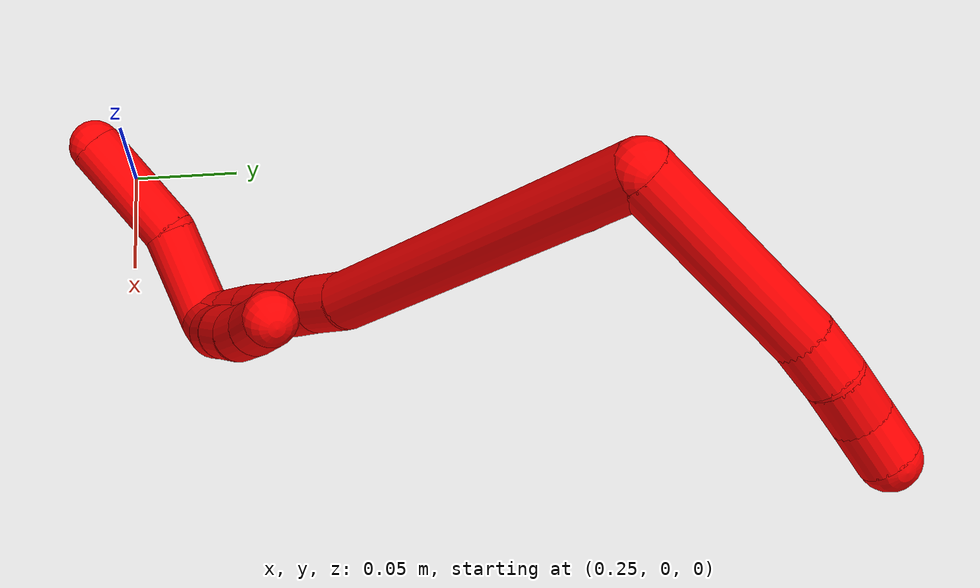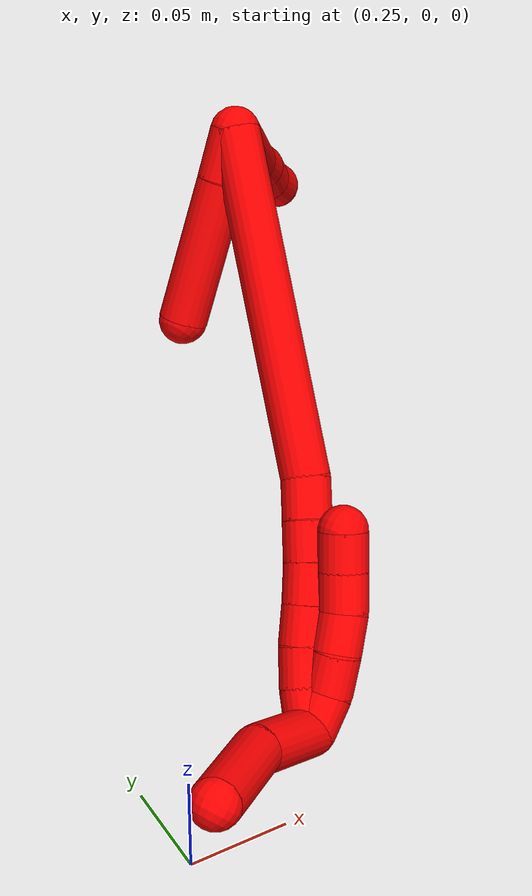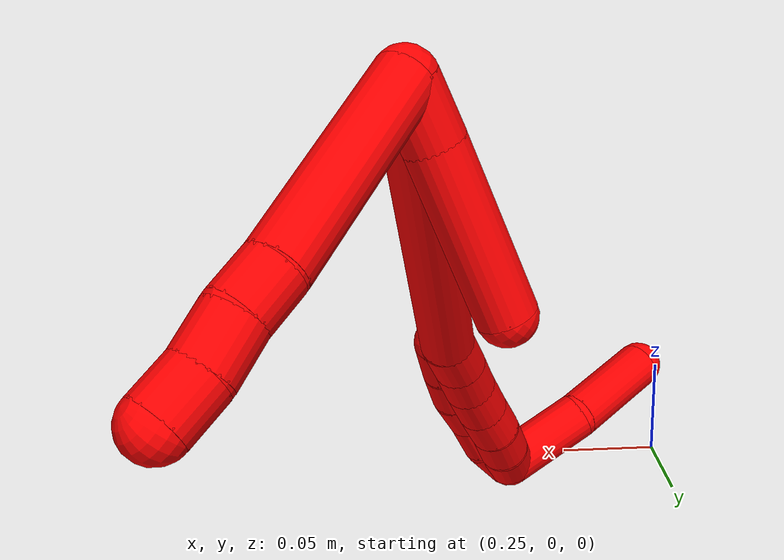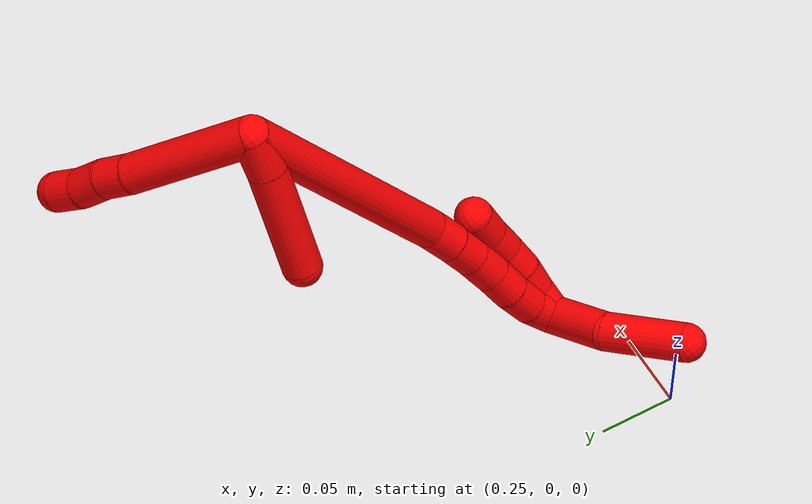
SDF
<sdf version="1.7">
 <world name="default">
  <model name="2">
   <static>0</static>
   <link name="2">
    <collision name="collision-cylinder-e_1_2_8">
     <pose>0.037744 -0.021719 0.008187 1.21032 1.01947 0.737957</pose>
     <geometry><cylinder><radius>0.0125</radius><length>0.08862</length></cylinder></geometry>
     <surface>
      <friction><ode><mu>1.16</mu><mu2>1.16</mu2><slip1>0</slip1><slip2>0</slip2></ode></friction>
      <contact><ode><kp>1e+06</kp><kd>1</kd><max_vel>0</max_vel><min_depth>0.001</min_depth></ode></contact>
     </surface>
    </collision>
    <visual name="visual-cylinder-e_1_2_8">
     <pose>0.037744 -0.021719 0.008187 1.21032 1.01947 0.737957</pose>
     <geometry><cylinder><radius>0.0125</radius><length>0.08862</length></cylinder></geometry>
     <material><ambient>1 0 0 1</ambient></material>
    </visual>
    <collision name="collision-cylinder-e_2_8_9">
     <pose>0.083368 -0.049268 0.018736 1.18589 0.897043 0.627141</pose>
     <geometry><cylinder><radius>0.0125</radius><length>0.020165</length></cylinder></geometry>
     <surface>
      <friction><ode><mu>1.16</mu><mu2>1.16</mu2><slip1>0</slip1><slip2>0</slip2></ode></friction>
      <contact><ode><kp>1e+06</kp><kd>1</kd><max_vel>0</max_vel><min_depth>0.001</min_depth></ode></contact>
     </surface>
    </collision>
    <visual name="visual-cylinder-e_2_8_9">
     <pose>0.083368 -0.049268 0.018736 1.18589 0.897043 0.627141</pose>
     <geometry><cylinder><radius>0.0125</radius><length>0.020165</length></cylinder></geometry>
     <material><ambient>1 0 0 1</ambient></material>
    </visual>
    <collision name="collision-cylinder-e_3_9_10">
     <pose>0.099508 -0.061493 0.02183 1.45669 0.908894 0.821896</pose>
     <geometry><cylinder><radius>0.0125</radius><length>0.020943</length></cylinder></geometry>
     <surface>
      <friction><ode><mu>1.16</mu><mu2>1.16</mu2><slip1>0</slip1><slip2>0</slip2></ode></friction>
      <contact><ode><kp>1e+06</kp><kd>1</kd><max_vel>0</max_vel><min_depth>0.001</min_depth></ode></contact>
     </surface>
    </collision>
    <visual name="visual-cylinder-e_3_9_10">
     <pose>0.099508 -0.061493 0.02183 1.45669 0.908894 0.821896</pose>
     <geometry><cylinder><radius>0.0125</radius><length>0.020943</length></cylinder></geometry>
     <material><ambient>1 0 0 1</ambient></material>
    </visual>
    <collision name="collision-cylinder-e_4_10_6">
     <pose>0.11528 -0.074258 0.024952 1.21216 0.834801 0.596392</pose>
     <geometry><cylinder><radius>0.0125</radius><length>0.020272</length></cylinder></geometry>
     <surface>
      <friction><ode><mu>1.16</mu><mu2>1.16</mu2><slip1>0</slip1><slip2>0</slip2></ode></friction>
      <contact><ode><kp>1e+06</kp><kd>1</kd><max_vel>0</max_vel><min_depth>0.001</min_depth></ode></contact>
     </surface>
    </collision>
    <visual name="visual-cylinder-e_4_10_6">
     <pose>0.11528 -0.074258 0.024952 1.21216 0.834801 0.596392</pose>
     <geometry><cylinder><radius>0.0125</radius><length>0.020272</length></cylinder></geometry>
     <material><ambient>1 0 0 1</ambient></material>
    </visual>
    <collision name="collision-cylinder-e_1_2_11">
     <pose>0.003308 -0.004579 -0.011884 2.77379 0.254132 1.20366</pose>
     <geometry><cylinder><radius>0.0125</radius><length>0.026317</length></cylinder></geometry>
     <surface>
      <friction><ode><mu>1.16</mu><mu2>1.16</mu2><slip1>0</slip1><slip2>0</slip2></ode></friction>
      <contact><ode><kp>1e+06</kp><kd>1</kd><max_vel>0</max_vel><min_depth>0.001</min_depth></ode></contact>
     </surface>
    </collision>
    <visual name="visual-cylinder-e_1_2_11">
     <pose>0.003308 -0.004579 -0.011884 2.77379 0.254132 1.20366</pose>
     <geometry><cylinder><radius>0.0125</radius><length>0.026317</length></cylinder></geometry>
     <material><ambient>1 0 0 1</ambient></material>
    </visual>
    <collision name="collision-cylinder-e_2_11_5">
     <pose>0.017909 -0.022098 -0.056362 2.76369 0.311539 1.37508</pose>
     <geometry><cylinder><radius>0.0125</radius><length>0.073683</length></cylinder></geometry>
     <surface>
      <friction><ode><mu>1.16</mu><mu2>1.16</mu2><slip1>0</slip1><slip2>0</slip2></ode></friction>
      <contact><ode><kp>1e+06</kp><kd>1</kd><max_vel>0</max_vel><min_depth>0.001</min_depth></ode></contact>
     </surface>
    </collision>
    <visual name="visual-cylinder-e_2_11_5">
     <pose>0.017909 -0.022098 -0.056362 2.76369 0.311539 1.37508</pose>
     <geometry><cylinder><radius>0.0125</radius><length>0.073683</length></cylinder></geometry>
     <material><ambient>1 0 0 1</ambient></material>
    </visual>
    <collision name="collision-cylinder-e_1_2_12">
     <pose>-0.018643 -0.053241 -0.067986 2.47723 -0.212634 -0.600051</pose>
     <geometry><cylinder><radius>0.0125</radius><length>0.176684</length></cylinder></geometry>
     <surface>
      <friction><ode><mu>1.16</mu><mu2>1.16</mu2><slip1>0</slip1><slip2>0</slip2></ode></friction>
      <contact><ode><kp>1e+06</kp><kd>1</kd><max_vel>0</max_vel><min_depth>0.001</min_depth></ode></contact>
     </surface>
    </collision>
    <visual name="visual-cylinder-e_1_2_12">
     <pose>-0.018643 -0.053241 -0.067986 2.47723 -0.212634 -0.600051</pose>
     <geometry><cylinder><radius>0.0125</radius><length>0.176684</length></cylinder></geometry>
     <material><ambient>1 0 0 1</ambient></material>
    </visual>
    <collision name="collision-cylinder-e_2_12_13">
     <pose>-0.039574 -0.111245 -0.145245 2.66714 -0.215972 -0.843003</pose>
     <geometry><cylinder><radius>0.0125</radius><length>0.021344</length></cylinder></geometry>
     <surface>
      <friction><ode><mu>1.16</mu><mu2>1.16</mu2><slip1>0</slip1><slip2>0</slip2></ode></friction>
      <contact><ode><kp>1e+06</kp><kd>1</kd><max_vel>0</max_vel><min_depth>0.001</min_depth></ode></contact>
     </surface>
    </collision>
    <visual name="visual-cylinder-e_2_12_13">
     <pose>-0.039574 -0.111245 -0.145245 2.66714 -0.215972 -0.843003</pose>
     <geometry><cylinder><radius>0.0125</radius><length>0.021344</length></cylinder></geometry>
     <material><ambient>1 0 0 1</ambient></material>
    </visual>
    <collision name="collision-cylinder-e_3_13_14">
     <pose>-0.04361 -0.120767 -0.163355 2.64755 -0.172576 -0.660909</pose>
     <geometry><cylinder><radius>0.0125</radius><length>0.020378</length></cylinder></geometry>
     <surface>
      <friction><ode><mu>1.16</mu><mu2>1.16</mu2><slip1>0</slip1><slip2>0</slip2></ode></friction>
      <contact><ode><kp>1e+06</kp><kd>1</kd><max_vel>0</max_vel><min_depth>0.001</min_depth></ode></contact>
     </surface>
    </collision>
    <visual name="visual-cylinder-e_3_13_14">
     <pose>-0.04361 -0.120767 -0.163355 2.64755 -0.172576 -0.660909</pose>
     <geometry><cylinder><radius>0.0125</radius><length>0.020378</length></cylinder></geometry>
     <material><ambient>1 0 0 1</ambient></material>
    </visual>
    <collision name="collision-cylinder-e_4_14_15">
     <pose>-0.046651 -0.129873 -0.18148 2.70383 -0.125203 -0.54934</pose>
     <geometry><cylinder><radius>0.0125</radius><length>0.020672</length></cylinder></geometry>
     <surface>
      <friction><ode><mu>1.16</mu><mu2>1.16</mu2><slip1>0</slip1><slip2>0</slip2></ode></friction>
      <contact><ode><kp>1e+06</kp><kd>1</kd><max_vel>0</max_vel><min_depth>0.001</min_depth></ode></contact>
     </surface>
    </collision>
    <visual name="visual-cylinder-e_4_14_15">
     <pose>-0.046651 -0.129873 -0.18148 2.70383 -0.125203 -0.54934</pose>
     <geometry><cylinder><radius>0.0125</radius><length>0.020672</length></cylinder></geometry>
     <material><ambient>1 0 0 1</ambient></material>
    </visual>
    <collision name="collision-cylinder-e_5_15_16">
     <pose>-0.048878 -0.13812 -0.199941 2.73964 -0.093734 -0.452546</pose>
     <geometry><cylinder><radius>0.0125</radius><length>0.020023</length></cylinder></geometry>
     <surface>
      <friction><ode><mu>1.16</mu><mu2>1.16</mu2><slip1>0</slip1><slip2>0</slip2></ode></friction>
      <contact><ode><kp>1e+06</kp><kd>1</kd><max_vel>0</max_vel><min_depth>0.001</min_depth></ode></contact>
     </surface>
    </collision>
    <visual name="visual-cylinder-e_5_15_16">
     <pose>-0.048878 -0.13812 -0.199941 2.73964 -0.093734 -0.452546</pose>
     <geometry><cylinder><radius>0.0125</radius><length>0.020023</length></cylinder></geometry>
     <material><ambient>1 0 0 1</ambient></material>
    </visual>
    <collision name="collision-cylinder-e_6_16_17">
     <pose>-0.05147 -0.146784 -0.217977 2.64829 -0.163014 -0.627462</pose>
     <geometry><cylinder><radius>0.0125</radius><length>0.020394</length></cylinder></geometry>
     <surface>
      <friction><ode><mu>1.16</mu><mu2>1.16</mu2><slip1>0</slip1><slip2>0</slip2></ode></friction>
      <contact><ode><kp>1e+06</kp><kd>1</kd><max_vel>0</max_vel><min_depth>0.001</min_depth></ode></contact>
     </surface>
    </collision>
    <visual name="visual-cylinder-e_6_16_17">
     <pose>-0.05147 -0.146784 -0.217977 2.64829 -0.163014 -0.627462</pose>
     <geometry><cylinder><radius>0.0125</radius><length>0.020394</length></cylinder></geometry>
     <material><ambient>1 0 0 1</ambient></material>
    </visual>
    <collision name="collision-cylinder-e_7_17_1">
     <pose>-0.056281 -0.156619 -0.235173 2.59507 -0.31285 -1.0251</pose>
     <geometry><cylinder><radius>0.0125</radius><length>0.020505</length></cylinder></geometry>
     <surface>
      <friction><ode><mu>1.16</mu><mu2>1.16</mu2><slip1>0</slip1><slip2>0</slip2></ode></friction>
      <contact><ode><kp>1e+06</kp><kd>1</kd><max_vel>0</max_vel><min_depth>0.001</min_depth></ode></contact>
     </surface>
    </collision>
    <visual name="visual-cylinder-e_7_17_1">
     <pose>-0.056281 -0.156619 -0.235173 2.59507 -0.31285 -1.0251</pose>
     <geometry><cylinder><radius>0.0125</radius><length>0.020505</length></cylinder></geometry>
     <material><ambient>1 0 0 1</ambient></material>
    </visual>
    <collision name="collision-cylinder-e_1_1_18">
     <pose>-0.059926 -0.160712 -0.233567 -0.097911 -0.04906 0.002404</pose>
     <geometry><cylinder><radius>0.0125</radius><length>0.02</length></cylinder></geometry>
     <surface>
      <friction><ode><mu>1.16</mu><mu2>1.16</mu2><slip1>0</slip1><slip2>0</slip2></ode></friction>
      <contact><ode><kp>1e+06</kp><kd>1</kd><max_vel>0</max_vel><min_depth>0.001</min_depth></ode></contact>
     </surface>
    </collision>
    <visual name="visual-cylinder-e_1_1_18">
     <pose>-0.059926 -0.160712 -0.233567 -0.097911 -0.04906 0.002404</pose>
     <geometry><cylinder><radius>0.0125</radius><length>0.02</length></cylinder></geometry>
     <material><ambient>1 0 0 1</ambient></material>
    </visual>
    <collision name="collision-cylinder-e_2_18_19">
     <pose>-0.06144 -0.156213 -0.214324 -0.362027 -0.102534 0.018781</pose>
     <geometry><cylinder><radius>0.0125</radius><length>0.02</length></cylinder></geometry>
     <surface>
      <friction><ode><mu>1.16</mu><mu2>1.16</mu2><slip1>0</slip1><slip2>0</slip2></ode></friction>
      <contact><ode><kp>1e+06</kp><kd>1</kd><max_vel>0</max_vel><min_depth>0.001</min_depth></ode></contact>
     </surface>
    </collision>
    <visual name="visual-cylinder-e_2_18_19">
     <pose>-0.06144 -0.156213 -0.214324 -0.362027 -0.102534 0.018781</pose>
     <geometry><cylinder><radius>0.0125</radius><length>0.02</length></cylinder></geometry>
     <material><ambient>1 0 0 1</ambient></material>
    </visual>
    <collision name="collision-cylinder-e_3_19_20">
     <pose>-0.062176 -0.149387 -0.195587 -0.336723 0.028818 -0.004899</pose>
     <geometry><cylinder><radius>0.0125</radius><length>0.02</length></cylinder></geometry>
     <surface>
      <friction><ode><mu>1.16</mu><mu2>1.16</mu2><slip1>0</slip1><slip2>0</slip2></ode></friction>
      <contact><ode><kp>1e+06</kp><kd>1</kd><max_vel>0</max_vel><min_depth>0.001</min_depth></ode></contact>
     </surface>
    </collision>
    <visual name="visual-cylinder-e_3_19_20">
     <pose>-0.062176 -0.149387 -0.195587 -0.336723 0.028818 -0.004899</pose>
     <geometry><cylinder><radius>0.0125</radius><length>0.02</length></cylinder></geometry>
     <material><ambient>1 0 0 1</ambient></material>
    </visual>
    <collision name="collision-cylinder-e_4_20_21">
     <pose>-0.061551 -0.141037 -0.177526 -0.529384 0.033663 -0.009125</pose>
     <geometry><cylinder><radius>0.0125</radius><length>0.02</length></cylinder></geometry>
     <surface>
      <friction><ode><mu>1.16</mu><mu2>1.16</mu2><slip1>0</slip1><slip2>0</slip2></ode></friction>
      <contact><ode><kp>1e+06</kp><kd>1</kd><max_vel>0</max_vel><min_depth>0.001</min_depth></ode></contact>
     </surface>
    </collision>
    <visual name="visual-cylinder-e_4_20_21">
     <pose>-0.061551 -0.141037 -0.177526 -0.529384 0.033663 -0.009125</pose>
     <geometry><cylinder><radius>0.0125</radius><length>0.02</length></cylinder></geometry>
     <material><ambient>1 0 0 1</ambient></material>
    </visual>
    <collision name="collision-cylinder-e_5_21_4">
     <pose>-0.061527 -0.130638 -0.160458 -0.565037 -0.031298 0.009086</pose>
     <geometry><cylinder><radius>0.0125</radius><length>0.02</length></cylinder></geometry>
     <surface>
      <friction><ode><mu>1.16</mu><mu2>1.16</mu2><slip1>0</slip1><slip2>0</slip2></ode></friction>
      <contact><ode><kp>1e+06</kp><kd>1</kd><max_vel>0</max_vel><min_depth>0.001</min_depth></ode></contact>
     </surface>
    </collision>
    <visual name="visual-cylinder-e_5_21_4">
     <pose>-0.061527 -0.130638 -0.160458 -0.565037 -0.031298 0.009086</pose>
     <geometry><cylinder><radius>0.0125</radius><length>0.02</length></cylinder></geometry>
     <material><ambient>1 0 0 1</ambient></material>
    </visual>
    <collision name="collision-cylinder-e_1_1_22">
     <pose>-0.070881 -0.144731 -0.253522 -2.10425 -0.526441 0.882157</pose>
     <geometry><cylinder><radius>0.0125</radius><length>0.045558</length></cylinder></geometry>
     <surface>
      <friction><ode><mu>1.16</mu><mu2>1.16</mu2><slip1>0</slip1><slip2>0</slip2></ode></friction>
      <contact><ode><kp>1e+06</kp><kd>1</kd><max_vel>0</max_vel><min_depth>0.001</min_depth></ode></contact>
     </surface>
    </collision>
    <visual name="visual-cylinder-e_1_1_22">
     <pose>-0.070881 -0.144731 -0.253522 -2.10425 -0.526441 0.882157</pose>
     <geometry><cylinder><radius>0.0125</radius><length>0.045558</length></cylinder></geometry>
     <material><ambient>1 0 0 1</ambient></material>
    </visual>
    <collision name="collision-cylinder-e_2_22_3">
     <pose>-0.101127 -0.114206 -0.277801 -2.38126 -0.762394 1.57379</pose>
     <geometry><cylinder><radius>0.0125</radius><length>0.054442</length></cylinder></geometry>
     <surface>
      <friction><ode><mu>1.16</mu><mu2>1.16</mu2><slip1>0</slip1><slip2>0</slip2></ode></friction>
      <contact><ode><kp>1e+06</kp><kd>1</kd><max_vel>0</max_vel><min_depth>0.001</min_depth></ode></contact>
     </surface>
    </collision>
    <visual name="visual-cylinder-e_2_22_3">
     <pose>-0.101127 -0.114206 -0.277801 -2.38126 -0.762394 1.57379</pose>
     <geometry><cylinder><radius>0.0125</radius><length>0.054442</length></cylinder></geometry>
     <material><ambient>1 0 0 1</ambient></material>
    </visual>
    <collision name="collision-sphere-3">
     <pose>-0.119928 -0.100639 -0.292066 0 -0 0</pose>
     <geometry><sphere><radius>0.0125</radius></sphere></geometry>
     <surface>
      <friction><ode><mu>1.16</mu><mu2>1.16</mu2><slip1>0</slip1><slip2>0</slip2></ode></friction>
      <contact><ode><kp>1e+06</kp><kd>1</kd><max_vel>0</max_vel><min_depth>0.001</min_depth></ode></contact>
     </surface>
    </collision>
    <visual name="visual-sphere-3">
     <pose>-0.119928 -0.100639 -0.292066 0 -0 0</pose>
     <geometry><sphere><radius>0.0125</radius></sphere></geometry>
     <material><ambient>1 0 0 1</ambient></material>
    </visual>
    <collision name="collision-sphere-22">
     <pose>-0.082327 -0.127772 -0.263537 0 -0 0</pose>
     <geometry><sphere><radius>0.0125</radius></sphere></geometry>
     <surface>
      <friction><ode><mu>1.16</mu><mu2>1.16</mu2><slip1>0</slip1><slip2>0</slip2></ode></friction>
      <contact><ode><kp>1e+06</kp><kd>1</kd><max_vel>0</max_vel><min_depth>0.001</min_depth></ode></contact>
     </surface>
    </collision>
    <visual name="visual-sphere-22">
     <pose>-0.082327 -0.127772 -0.263537 0 -0 0</pose>
     <geometry><sphere><radius>0.0125</radius></sphere></geometry>
     <material><ambient>1 0 0 1</ambient></material>
    </visual>
    <collision name="collision-sphere-4">
     <pose>-0.06184 -0.125287 -0.152017 0 -0 0</pose>
     <geometry><sphere><radius>0.0125</radius></sphere></geometry>
     <surface>
      <friction><ode><mu>1.16</mu><mu2>1.16</mu2><slip1>0</slip1><slip2>0</slip2></ode></friction>
      <contact><ode><kp>1e+06</kp><kd>1</kd><max_vel>0</max_vel><min_depth>0.001</min_depth></ode></contact>
     </surface>
    </collision>
    <visual name="visual-sphere-4">
     <pose>-0.06184 -0.125287 -0.152017 0 -0 0</pose>
     <geometry><sphere><radius>0.0125</radius></sphere></geometry>
     <material><ambient>1 0 0 1</ambient></material>
    </visual>
    <collision name="collision-sphere-21">
     <pose>-0.061214 -0.13599 -0.1689 0 -0 0</pose>
     <geometry><sphere><radius>0.0125</radius></sphere></geometry>
     <surface>
      <friction><ode><mu>1.16</mu><mu2>1.16</mu2><slip1>0</slip1><slip2>0</slip2></ode></friction>
      <contact><ode><kp>1e+06</kp><kd>1</kd><max_vel>0</max_vel><min_depth>0.001</min_depth></ode></contact>
     </surface>
    </collision>
    <visual name="visual-sphere-21">
     <pose>-0.061214 -0.13599 -0.1689 0 -0 0</pose>
     <geometry><sphere><radius>0.0125</radius></sphere></geometry>
     <material><ambient>1 0 0 1</ambient></material>
    </visual>
    <collision name="collision-sphere-20">
     <pose>-0.061888 -0.146085 -0.186152 0 -0 0</pose>
     <geometry><sphere><radius>0.0125</radius></sphere></geometry>
     <surface>
      <friction><ode><mu>1.16</mu><mu2>1.16</mu2><slip1>0</slip1><slip2>0</slip2></ode></friction>
      <contact><ode><kp>1e+06</kp><kd>1</kd><max_vel>0</max_vel><min_depth>0.001</min_depth></ode></contact>
     </surface>
    </collision>
    <visual name="visual-sphere-20">
     <pose>-0.061888 -0.146085 -0.186152 0 -0 0</pose>
     <geometry><sphere><radius>0.0125</radius></sphere></geometry>
     <material><ambient>1 0 0 1</ambient></material>
    </visual>
    <collision name="collision-sphere-11">
     <pose>0.006616 -0.009159 -0.023768 0 -0 0</pose>
     <geometry><sphere><radius>0.0125</radius></sphere></geometry>
     <surface>
      <friction><ode><mu>1.16</mu><mu2>1.16</mu2><slip1>0</slip1><slip2>0</slip2></ode></friction>
      <contact><ode><kp>1e+06</kp><kd>1</kd><max_vel>0</max_vel><min_depth>0.001</min_depth></ode></contact>
     </surface>
    </collision>
    <visual name="visual-sphere-11">
     <pose>0.006616 -0.009159 -0.023768 0 -0 0</pose>
     <geometry><sphere><radius>0.0125</radius></sphere></geometry>
     <material><ambient>1 0 0 1</ambient></material>
    </visual>
    <collision name="collision-sphere-6">
     <pose>0.122793 -0.08063 0.02734 0 -0 0</pose>
     <geometry><sphere><radius>0.0125</radius></sphere></geometry>
     <surface>
      <friction><ode><mu>1.16</mu><mu2>1.16</mu2><slip1>0</slip1><slip2>0</slip2></ode></friction>
      <contact><ode><kp>1e+06</kp><kd>1</kd><max_vel>0</max_vel><min_depth>0.001</min_depth></ode></contact>
     </surface>
    </collision>
    <visual name="visual-sphere-6">
     <pose>0.122793 -0.08063 0.02734 0 -0 0</pose>
     <geometry><sphere><radius>0.0125</radius></sphere></geometry>
     <material><ambient>1 0 0 1</ambient></material>
    </visual>
    <collision name="collision-sphere-10">
     <pose>0.107768 -0.067887 0.022563 0 -0 0</pose>
     <geometry><sphere><radius>0.0125</radius></sphere></geometry>
     <surface>
      <friction><ode><mu>1.16</mu><mu2>1.16</mu2><slip1>0</slip1><slip2>0</slip2></ode></friction>
      <contact><ode><kp>1e+06</kp><kd>1</kd><max_vel>0</max_vel><min_depth>0.001</min_depth></ode></contact>
     </surface>
    </collision>
    <visual name="visual-sphere-10">
     <pose>0.107768 -0.067887 0.022563 0 -0 0</pose>
     <geometry><sphere><radius>0.0125</radius></sphere></geometry>
     <material><ambient>1 0 0 1</ambient></material>
    </visual>
    <collision name="collision-sphere-9">
     <pose>0.091248 -0.055099 0.021098 0 -0 0</pose>
     <geometry><sphere><radius>0.0125</radius></sphere></geometry>
     <surface>
      <friction><ode><mu>1.16</mu><mu2>1.16</mu2><slip1>0</slip1><slip2>0</slip2></ode></friction>
      <contact><ode><kp>1e+06</kp><kd>1</kd><max_vel>0</max_vel><min_depth>0.001</min_depth></ode></contact>
     </surface>
    </collision>
    <visual name="visual-sphere-9">
     <pose>0.091248 -0.055099 0.021098 0 -0 0</pose>
     <geometry><sphere><radius>0.0125</radius></sphere></geometry>
     <material><ambient>1 0 0 1</ambient></material>
    </visual>
    <collision name="collision-sphere-2">
     <geometry><sphere><radius>0.0125</radius></sphere></geometry>
     <surface>
      <friction><ode><mu>1.16</mu><mu2>1.16</mu2><slip1>0</slip1><slip2>0</slip2></ode></friction>
      <contact><ode><kp>1e+06</kp><kd>1</kd><max_vel>0</max_vel><min_depth>0.001</min_depth></ode></contact>
     </surface>
    </collision>
    <visual name="visual-sphere-2">
     <geometry><sphere><radius>0.0125</radius></sphere></geometry>
     <material><ambient>1 0 0 1</ambient></material>
    </visual>
    <collision name="collision-sphere-19">
     <pose>-0.062464 -0.15269 -0.205021 0 -0 0</pose>
     <geometry><sphere><radius>0.0125</radius></sphere></geometry>
     <surface>
      <friction><ode><mu>1.16</mu><mu2>1.16</mu2><slip1>0</slip1><slip2>0</slip2></ode></friction>
      <contact><ode><kp>1e+06</kp><kd>1</kd><max_vel>0</max_vel><min_depth>0.001</min_depth></ode></contact>
     </surface>
    </collision>
    <visual name="visual-sphere-19">
     <pose>-0.062464 -0.15269 -0.205021 0 -0 0</pose>
     <geometry><sphere><radius>0.0125</radius></sphere></geometry>
     <material><ambient>1 0 0 1</ambient></material>
    </visual>
    <collision name="collision-sphere-8">
     <pose>0.075489 -0.043437 0.016374 0 -0 0</pose>
     <geometry><sphere><radius>0.0125</radius></sphere></geometry>
     <surface>
      <friction><ode><mu>1.16</mu><mu2>1.16</mu2><slip1>0</slip1><slip2>0</slip2></ode></friction>
      <contact><ode><kp>1e+06</kp><kd>1</kd><max_vel>0</max_vel><min_depth>0.001</min_depth></ode></contact>
     </surface>
    </collision>
    <visual name="visual-sphere-8">
     <pose>0.075489 -0.043437 0.016374 0 -0 0</pose>
     <geometry><sphere><radius>0.0125</radius></sphere></geometry>
     <material><ambient>1 0 0 1</ambient></material>
    </visual>
    <collision name="collision-sphere-5">
     <pose>0.029202 -0.035037 -0.088955 0 -0 0</pose>
     <geometry><sphere><radius>0.0125</radius></sphere></geometry>
     <surface>
      <friction><ode><mu>1.16</mu><mu2>1.16</mu2><slip1>0</slip1><slip2>0</slip2></ode></friction>
      <contact><ode><kp>1e+06</kp><kd>1</kd><max_vel>0</max_vel><min_depth>0.001</min_depth></ode></contact>
     </surface>
    </collision>
    <visual name="visual-sphere-5">
     <pose>0.029202 -0.035037 -0.088955 0 -0 0</pose>
     <geometry><sphere><radius>0.0125</radius></sphere></geometry>
     <material><ambient>1 0 0 1</ambient></material>
    </visual>
    <collision name="collision-sphere-12">
     <pose>-0.037287 -0.106482 -0.135972 0 -0 0</pose>
     <geometry><sphere><radius>0.0125</radius></sphere></geometry>
     <surface>
      <friction><ode><mu>1.16</mu><mu2>1.16</mu2><slip1>0</slip1><slip2>0</slip2></ode></friction>
      <contact><ode><kp>1e+06</kp><kd>1</kd><max_vel>0</max_vel><min_depth>0.001</min_depth></ode></contact>
     </surface>
    </collision>
    <visual name="visual-sphere-12">
     <pose>-0.037287 -0.106482 -0.135972 0 -0 0</pose>
     <geometry><sphere><radius>0.0125</radius></sphere></geometry>
     <material><ambient>1 0 0 1</ambient></material>
    </visual>
    <collision name="collision-sphere-13">
     <pose>-0.041861 -0.116007 -0.154518 0 -0 0</pose>
     <geometry><sphere><radius>0.0125</radius></sphere></geometry>
     <surface>
      <friction><ode><mu>1.16</mu><mu2>1.16</mu2><slip1>0</slip1><slip2>0</slip2></ode></friction>
      <contact><ode><kp>1e+06</kp><kd>1</kd><max_vel>0</max_vel><min_depth>0.001</min_depth></ode></contact>
     </surface>
    </collision>
    <visual name="visual-sphere-13">
     <pose>-0.041861 -0.116007 -0.154518 0 -0 0</pose>
     <geometry><sphere><radius>0.0125</radius></sphere></geometry>
     <material><ambient>1 0 0 1</ambient></material>
    </visual>
    <collision name="collision-sphere-14">
     <pose>-0.04536 -0.125526 -0.172192 0 -0 0</pose>
     <geometry><sphere><radius>0.0125</radius></sphere></geometry>
     <surface>
      <friction><ode><mu>1.16</mu><mu2>1.16</mu2><slip1>0</slip1><slip2>0</slip2></ode></friction>
      <contact><ode><kp>1e+06</kp><kd>1</kd><max_vel>0</max_vel><min_depth>0.001</min_depth></ode></contact>
     </surface>
    </collision>
    <visual name="visual-sphere-14">
     <pose>-0.04536 -0.125526 -0.172192 0 -0 0</pose>
     <geometry><sphere><radius>0.0125</radius></sphere></geometry>
     <material><ambient>1 0 0 1</ambient></material>
    </visual>
    <collision name="collision-sphere-15">
     <pose>-0.047941 -0.134221 -0.190768 0 -0 0</pose>
     <geometry><sphere><radius>0.0125</radius></sphere></geometry>
     <surface>
      <friction><ode><mu>1.16</mu><mu2>1.16</mu2><slip1>0</slip1><slip2>0</slip2></ode></friction>
      <contact><ode><kp>1e+06</kp><kd>1</kd><max_vel>0</max_vel><min_depth>0.001</min_depth></ode></contact>
     </surface>
    </collision>
    <visual name="visual-sphere-15">
     <pose>-0.047941 -0.134221 -0.190768 0 -0 0</pose>
     <geometry><sphere><radius>0.0125</radius></sphere></geometry>
     <material><ambient>1 0 0 1</ambient></material>
    </visual>
    <collision name="collision-sphere-16">
     <pose>-0.049815 -0.14202 -0.209115 0 -0 0</pose>
     <geometry><sphere><radius>0.0125</radius></sphere></geometry>
     <surface>
      <friction><ode><mu>1.16</mu><mu2>1.16</mu2><slip1>0</slip1><slip2>0</slip2></ode></friction>
      <contact><ode><kp>1e+06</kp><kd>1</kd><max_vel>0</max_vel><min_depth>0.001</min_depth></ode></contact>
     </surface>
    </collision>
    <visual name="visual-sphere-16">
     <pose>-0.049815 -0.14202 -0.209115 0 -0 0</pose>
     <geometry><sphere><radius>0.0125</radius></sphere></geometry>
     <material><ambient>1 0 0 1</ambient></material>
    </visual>
    <collision name="collision-sphere-17">
     <pose>-0.053125 -0.151549 -0.226839 0 -0 0</pose>
     <geometry><sphere><radius>0.0125</radius></sphere></geometry>
     <surface>
      <friction><ode><mu>1.16</mu><mu2>1.16</mu2><slip1>0</slip1><slip2>0</slip2></ode></friction>
      <contact><ode><kp>1e+06</kp><kd>1</kd><max_vel>0</max_vel><min_depth>0.001</min_depth></ode></contact>
     </surface>
    </collision>
    <visual name="visual-sphere-17">
     <pose>-0.053125 -0.151549 -0.226839 0 -0 0</pose>
     <geometry><sphere><radius>0.0125</radius></sphere></geometry>
     <material><ambient>1 0 0 1</ambient></material>
    </visual>
    <collision name="collision-sphere-1">
     <pose>-0.059436 -0.161689 -0.243507 0 -0 0</pose>
     <geometry><sphere><radius>0.0125</radius></sphere></geometry>
     <surface>
      <friction><ode><mu>1.16</mu><mu2>1.16</mu2><slip1>0</slip1><slip2>0</slip2></ode></friction>
      <contact><ode><kp>1e+06</kp><kd>1</kd><max_vel>0</max_vel><min_depth>0.001</min_depth></ode></contact>
     </surface>
    </collision>
    <visual name="visual-sphere-1">
     <pose>-0.059436 -0.161689 -0.243507 0 -0 0</pose>
     <geometry><sphere><radius>0.0125</radius></sphere></geometry>
     <material><ambient>1 0 0 1</ambient></material>
    </visual>
    <collision name="collision-sphere-18">
     <pose>-0.060417 -0.159736 -0.223627 0 -0 0</pose>
     <geometry><sphere><radius>0.0125</radius></sphere></geometry>
     <surface>
      <friction><ode><mu>1.16</mu><mu2>1.16</mu2><slip1>0</slip1><slip2>0</slip2></ode></friction>
      <contact><ode><kp>1e+06</kp><kd>1</kd><max_vel>0</max_vel><min_depth>0.001</min_depth></ode></contact>
     </surface>
    </collision>
    <visual name="visual-sphere-18">
     <pose>-0.060417 -0.159736 -0.223627 0 -0 0</pose>
     <geometry><sphere><radius>0.0125</radius></sphere></geometry>
     <material><ambient>1 0 0 1</ambient></material>
    </visual>
    <inertial>
     <pose>-0.017584 -0.081238 -0.112222 0 -0 0</pose>
     <mass>0.75</mass>
     <inertia>
      <ixx>0.000246</ixx>
      <ixy>0</ixy>
      <ixz>0</ixz>
      <iyy>-0.000411</iyy>
      <iyz>0</iyz>
      <izz>0.000342</izz>
     </inertia>
    </inertial>
   </link>
   <pose>0.395512 0.213203 0.24489 0.775494 0.449125 1.54382</pose>
  </model>
 </world>
</sdf>
